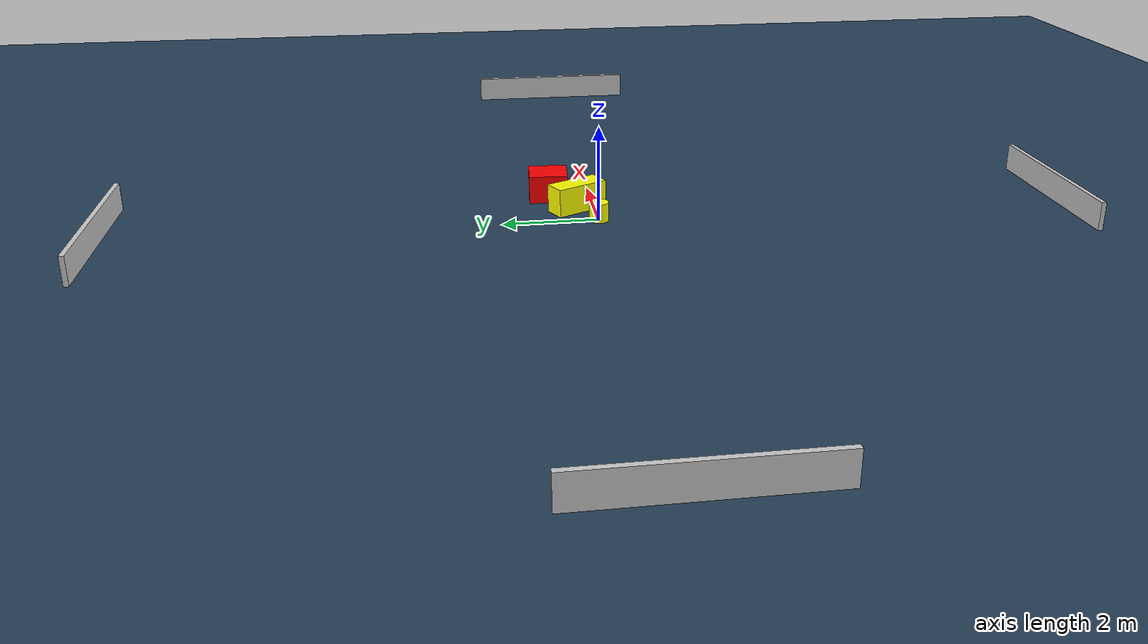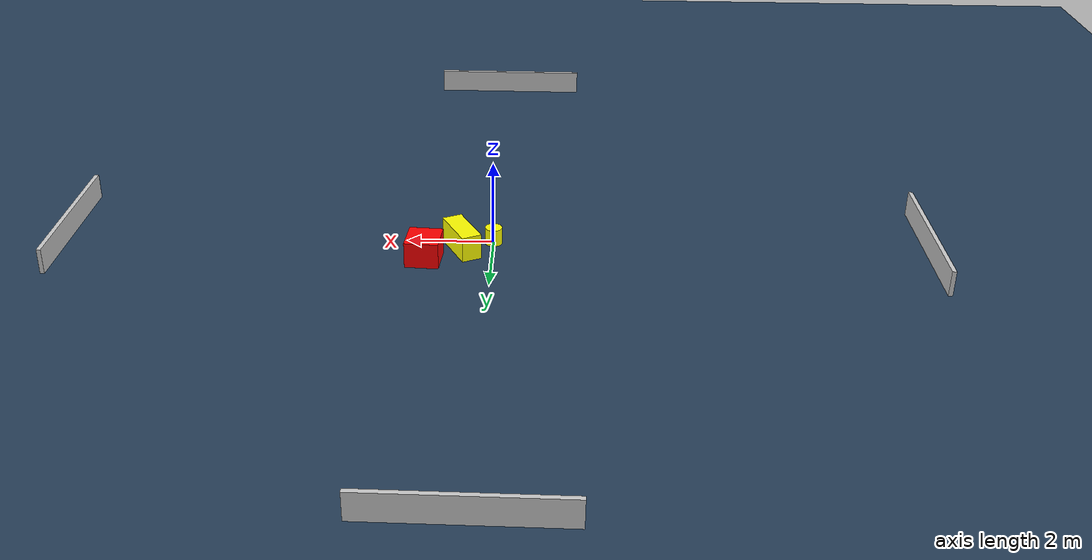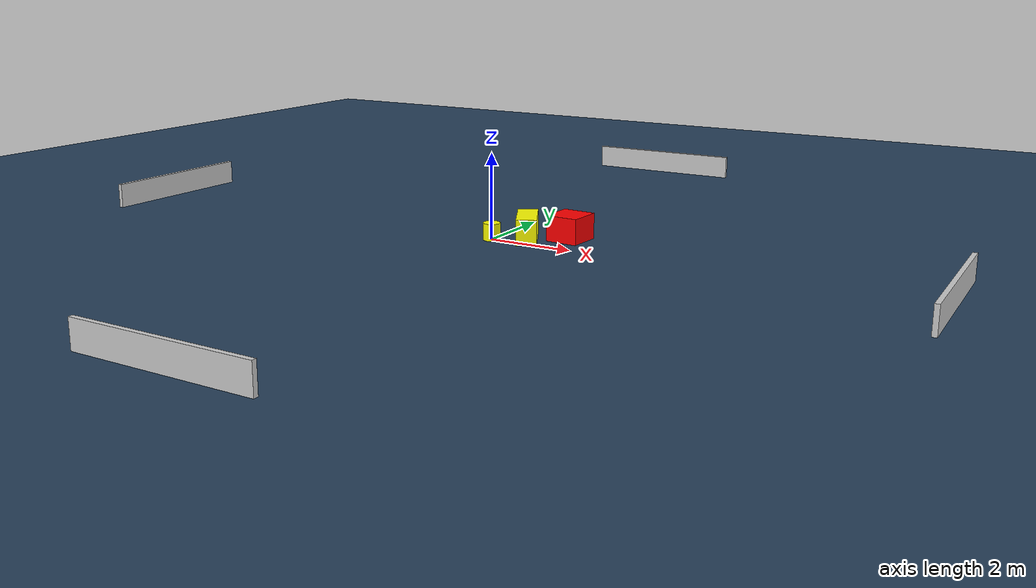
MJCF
<?xml version="1.0" ?>
<mujoco model="generated_environment">
  <option timestep="0.01" integrator="RK4" cone="elliptic"/>
  <default>
    <geom density="1"/>
  </default>
  <asset>
    <texture builtin="gradient" height="3072" name="skybox" rgb1="0.3 0.5 0.7" rgb2="0 0 0" type="skybox" width="512"/>
    <texture builtin="checker" height="300" name="groundplane" rgb1="0.2 0.3 0.4" rgb2="0.1 0.2 0.3" type="2d" width="300"/>
    <material name="groundplane" reflectance="0.2" texrepeat="5 5" texture="groundplane"/>
  </asset>
  <worldbody>
    <light dir="0 0 -1" directional="true" pos="0 0 1.5"/>
    <geom condim="3" friction="0.5 0.005 0.001" material="groundplane" name="floor" pos="0 0 0" size="0 0 0.05" type="plane"/>
    <body name="walls">
      <geom name="wall_1" condim="4" pos="-10.0 0.0 0.3" rgba="0.800000011920929 0.800000011920929 0.800000011920929 1.0" size="0.05 2.0 0.3" type="box"/>
      <geom name="wall_2" condim="4" pos="10.0 0.0 0.3" rgba="0.800000011920929 0.800000011920929 0.800000011920929 1.0" size="0.05 2.0 0.3" type="box"/>
      <geom name="wall_3" condim="4" pos="0.0 -10.0 0.3" rgba="0.800000011920929 0.800000011920929 0.800000011920929 1.0" size="2.0 0.05 0.3" type="box"/>
      <geom name="wall_4" condim="4" pos="0.0 10.0 0.3" rgba="0.800000011920929 0.800000011920929 0.800000011920929 1.0" size="2.0 0.05 0.3" type="box"/>
    </body>
    <body name="robot">
      <joint name="joint_x" type="slide" pos="0 0 0" axis="1 0 0"/>
      <joint name="joint_y" type="slide" pos="0 0 0" axis="0 1 0"/>
      <geom name="robot" type="cylinder" pos="0.0 0.0 0.2" size="0.2 0.2 0.0" mass="5.0" friction="1.0 0.005 0.0001" condim="4" rgba="1.0 1.0 0.0 1.0"/>
    </body>
    <body name="obstacle_1_movable">
      <geom name="obstacle_1_movable" condim="4" pos="0.7161566555949294 0.3725836407299113 0.3" euler="0 0 297.06027098198217" friction="0.0 0.005 0.001" rgba="1.0 1.0 0.0 1.0" size="0.5799221967841615 0.23532972723043752 0.3" type="box" mass="0.1"/>
      <joint type="free"/>
    </body>
    <body name="obstacle_2_static">
      <geom name="obstacle_2_static" condim="4" pos="1.5416658315400427 0.91067726063042 0.3" euler="0 0 86.31894257001386" friction="0.0 0.005 0.001" rgba="1.0 0.0 0.0 1.0" size="0.4133708200055233 0.3884568077501441 0.3" type="box"/>
    </body>
  </worldbody>
  <actuator>
    <motor name="actuator_x" joint="joint_x" gear="1" ctrlrange="-1 1"/>
    <motor name="actuator_y" joint="joint_y" gear="1" ctrlrange="-1 1"/>
  </actuator>
</mujoco>
